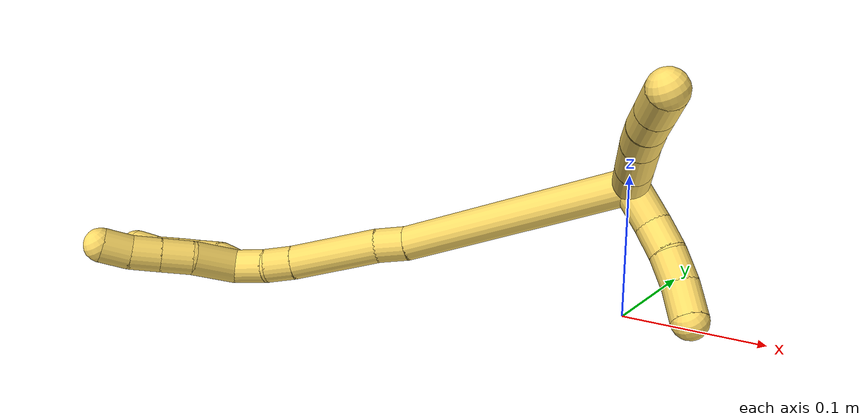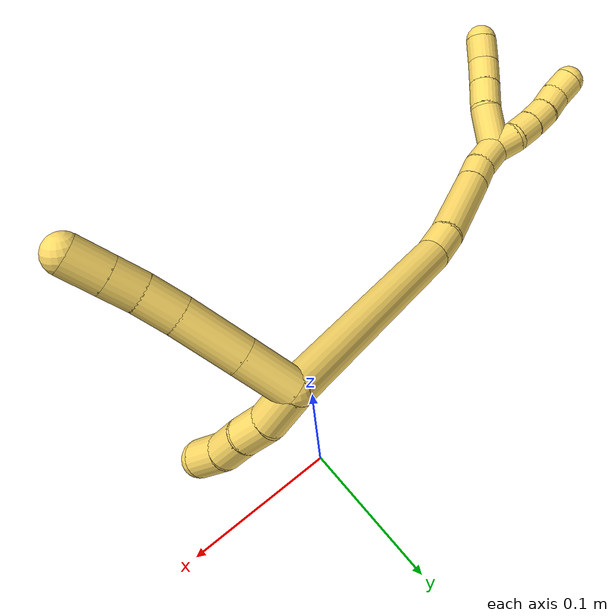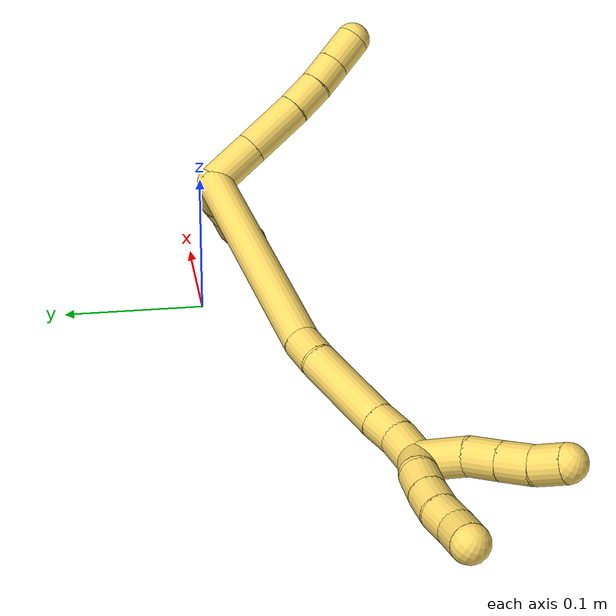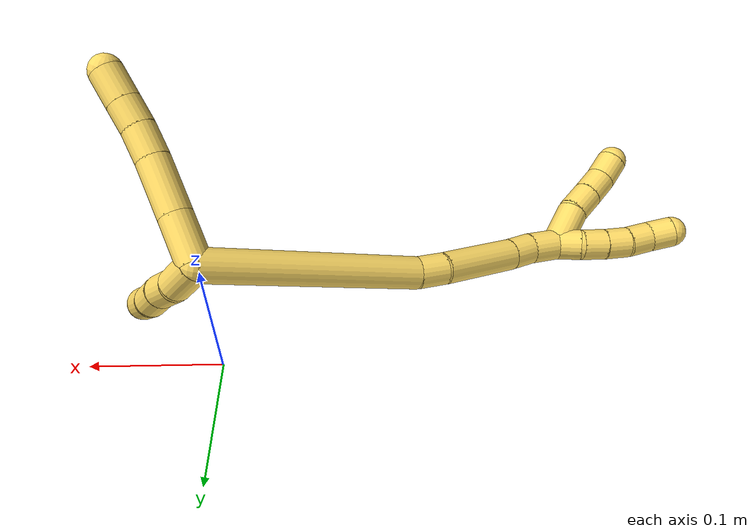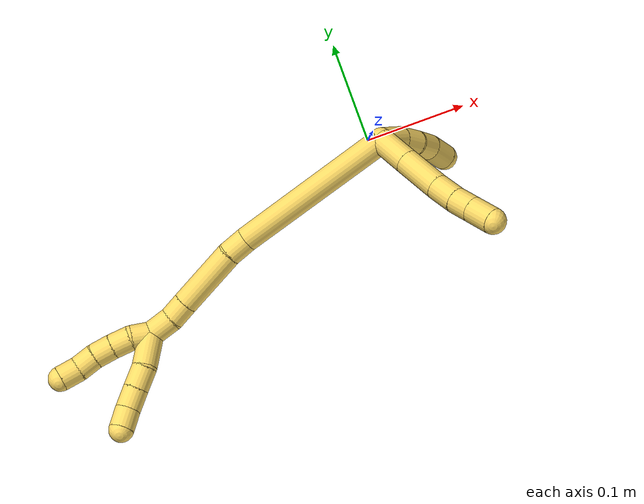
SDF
<sdf version="1.7">
 <world name="default">
  <model name="5">
   <static>0</static>
   <link name="5">
    <collision name="collision-cylinder-e_1_2_8">
     <pose>0.013256 -0.002416 0.012412 0.192221 0.80901 0.0825</pose>
     <geometry><cylinder><radius>0.0125</radius><length>0.03664</length></cylinder></geometry>
     <surface>
      <friction><ode><mu>1.16</mu><mu2>1.16</mu2><slip1>0</slip1><slip2>0</slip2></ode></friction>
      <contact><ode><kp>1e+06</kp><kd>1</kd><max_vel>0</max_vel><min_depth>0.001</min_depth></ode></contact>
     </surface>
    </collision>
    <visual name="visual-cylinder-e_1_2_8">
     <pose>0.013256 -0.002416 0.012412 0.192221 0.80901 0.0825</pose>
     <geometry><cylinder><radius>0.0125</radius><length>0.03664</length></cylinder></geometry>
     <material><ambient>1 0.858824 0.4 1</ambient></material>
    </visual>
    <collision name="collision-cylinder-e_2_8_9">
     <pose>0.042057 -0.007506 0.039374 0.181783 0.810112 0.078118</pose>
     <geometry><cylinder><radius>0.0125</radius><length>0.042917</length></cylinder></geometry>
     <surface>
      <friction><ode><mu>1.16</mu><mu2>1.16</mu2><slip1>0</slip1><slip2>0</slip2></ode></friction>
      <contact><ode><kp>1e+06</kp><kd>1</kd><max_vel>0</max_vel><min_depth>0.001</min_depth></ode></contact>
     </surface>
    </collision>
    <visual name="visual-cylinder-e_2_8_9">
     <pose>0.042057 -0.007506 0.039374 0.181783 0.810112 0.078118</pose>
     <geometry><cylinder><radius>0.0125</radius><length>0.042917</length></cylinder></geometry>
     <material><ambient>1 0.858824 0.4 1</ambient></material>
    </visual>
    <collision name="collision-cylinder-e_3_9_10">
     <pose>0.066682 -0.010998 0.062227 0.098152 0.827736 0.04314</pose>
     <geometry><cylinder><radius>0.0125</radius><length>0.024665</length></cylinder></geometry>
     <surface>
      <friction><ode><mu>1.16</mu><mu2>1.16</mu2><slip1>0</slip1><slip2>0</slip2></ode></friction>
      <contact><ode><kp>1e+06</kp><kd>1</kd><max_vel>0</max_vel><min_depth>0.001</min_depth></ode></contact>
     </surface>
    </collision>
    <visual name="visual-cylinder-e_3_9_10">
     <pose>0.066682 -0.010998 0.062227 0.098152 0.827736 0.04314</pose>
     <geometry><cylinder><radius>0.0125</radius><length>0.024665</length></cylinder></geometry>
     <material><ambient>1 0.858824 0.4 1</ambient></material>
    </visual>
    <collision name="collision-cylinder-e_4_10_11">
     <pose>0.083535 -0.011514 0.077332 -0.044248 0.851346 -0.020064</pose>
     <geometry><cylinder><radius>0.0125</radius><length>0.020663</length></cylinder></geometry>
     <surface>
      <friction><ode><mu>1.16</mu><mu2>1.16</mu2><slip1>0</slip1><slip2>0</slip2></ode></friction>
      <contact><ode><kp>1e+06</kp><kd>1</kd><max_vel>0</max_vel><min_depth>0.001</min_depth></ode></contact>
     </surface>
    </collision>
    <visual name="visual-cylinder-e_4_10_11">
     <pose>0.083535 -0.011514 0.077332 -0.044248 0.851346 -0.020064</pose>
     <geometry><cylinder><radius>0.0125</radius><length>0.020663</length></cylinder></geometry>
     <material><ambient>1 0.858824 0.4 1</ambient></material>
    </visual>
    <collision name="collision-cylinder-e_5_11_6">
     <pose>0.100748 -0.010843 0.092404 -0.044694 0.850988 -0.020257</pose>
     <geometry><cylinder><radius>0.0125</radius><length>0.025115</length></cylinder></geometry>
     <surface>
      <friction><ode><mu>1.16</mu><mu2>1.16</mu2><slip1>0</slip1><slip2>0</slip2></ode></friction>
      <contact><ode><kp>1e+06</kp><kd>1</kd><max_vel>0</max_vel><min_depth>0.001</min_depth></ode></contact>
     </surface>
    </collision>
    <visual name="visual-cylinder-e_5_11_6">
     <pose>0.100748 -0.010843 0.092404 -0.044694 0.850988 -0.020257</pose>
     <geometry><cylinder><radius>0.0125</radius><length>0.025115</length></cylinder></geometry>
     <material><ambient>1 0.858824 0.4 1</ambient></material>
    </visual>
    <collision name="collision-cylinder-e_1_2_12">
     <pose>0.009098 -0.002387 -0.011614 2.93891 0.654487 2.55947</pose>
     <geometry><cylinder><radius>0.0125</radius><length>0.029889</length></cylinder></geometry>
     <surface>
      <friction><ode><mu>1.16</mu><mu2>1.16</mu2><slip1>0</slip1><slip2>0</slip2></ode></friction>
      <contact><ode><kp>1e+06</kp><kd>1</kd><max_vel>0</max_vel><min_depth>0.001</min_depth></ode></contact>
     </surface>
    </collision>
    <visual name="visual-cylinder-e_1_2_12">
     <pose>0.009098 -0.002387 -0.011614 2.93891 0.654487 2.55947</pose>
     <geometry><cylinder><radius>0.0125</radius><length>0.029889</length></cylinder></geometry>
     <material><ambient>1 0.858824 0.4 1</ambient></material>
    </visual>
    <collision name="collision-cylinder-e_2_12_13">
     <pose>0.026492 -0.007927 -0.029914 2.70088 0.842956 2.21494</pose>
     <geometry><cylinder><radius>0.0125</radius><length>0.022226</length></cylinder></geometry>
     <surface>
      <friction><ode><mu>1.16</mu><mu2>1.16</mu2><slip1>0</slip1><slip2>0</slip2></ode></friction>
      <contact><ode><kp>1e+06</kp><kd>1</kd><max_vel>0</max_vel><min_depth>0.001</min_depth></ode></contact>
     </surface>
    </collision>
    <visual name="visual-cylinder-e_2_12_13">
     <pose>0.026492 -0.007927 -0.029914 2.70088 0.842956 2.21494</pose>
     <geometry><cylinder><radius>0.0125</radius><length>0.022226</length></cylinder></geometry>
     <material><ambient>1 0.858824 0.4 1</ambient></material>
    </visual>
    <collision name="collision-cylinder-e_3_13_14">
     <pose>0.042073 -0.015034 -0.04438 2.67137 0.695554 1.97377</pose>
     <geometry><cylinder><radius>0.0125</radius><length>0.022733</length></cylinder></geometry>
     <surface>
      <friction><ode><mu>1.16</mu><mu2>1.16</mu2><slip1>0</slip1><slip2>0</slip2></ode></friction>
      <contact><ode><kp>1e+06</kp><kd>1</kd><max_vel>0</max_vel><min_depth>0.001</min_depth></ode></contact>
     </surface>
    </collision>
    <visual name="visual-cylinder-e_3_13_14">
     <pose>0.042073 -0.015034 -0.04438 2.67137 0.695554 1.97377</pose>
     <geometry><cylinder><radius>0.0125</radius><length>0.022733</length></cylinder></geometry>
     <material><ambient>1 0.858824 0.4 1</ambient></material>
    </visual>
    <collision name="collision-cylinder-e_4_14_5">
     <pose>0.058192 -0.025168 -0.058632 2.37942 0.778963 1.5949</pose>
     <geometry><cylinder><radius>0.0125</radius><length>0.025152</length></cylinder></geometry>
     <surface>
      <friction><ode><mu>1.16</mu><mu2>1.16</mu2><slip1>0</slip1><slip2>0</slip2></ode></friction>
      <contact><ode><kp>1e+06</kp><kd>1</kd><max_vel>0</max_vel><min_depth>0.001</min_depth></ode></contact>
     </surface>
    </collision>
    <visual name="visual-cylinder-e_4_14_5">
     <pose>0.058192 -0.025168 -0.058632 2.37942 0.778963 1.5949</pose>
     <geometry><cylinder><radius>0.0125</radius><length>0.025152</length></cylinder></geometry>
     <material><ambient>1 0.858824 0.4 1</ambient></material>
    </visual>
    <collision name="collision-cylinder-e_1_2_15">
     <pose>-0.052295 -0.064424 0.003568 1.51548 -0.681106 -0.647001</pose>
     <geometry><cylinder><radius>0.0125</radius><length>0.166109</length></cylinder></geometry>
     <surface>
      <friction><ode><mu>1.16</mu><mu2>1.16</mu2><slip1>0</slip1><slip2>0</slip2></ode></friction>
      <contact><ode><kp>1e+06</kp><kd>1</kd><max_vel>0</max_vel><min_depth>0.001</min_depth></ode></contact>
     </surface>
    </collision>
    <visual name="visual-cylinder-e_1_2_15">
     <pose>-0.052295 -0.064424 0.003568 1.51548 -0.681106 -0.647001</pose>
     <geometry><cylinder><radius>0.0125</radius><length>0.166109</length></cylinder></geometry>
     <material><ambient>1 0.858824 0.4 1</ambient></material>
    </visual>
    <collision name="collision-cylinder-e_2_15_16">
     <pose>-0.111481 -0.137549 0.00981 1.27257 -0.64795 -0.486357</pose>
     <geometry><cylinder><radius>0.0125</radius><length>0.022832</length></cylinder></geometry>
     <surface>
      <friction><ode><mu>1.16</mu><mu2>1.16</mu2><slip1>0</slip1><slip2>0</slip2></ode></friction>
      <contact><ode><kp>1e+06</kp><kd>1</kd><max_vel>0</max_vel><min_depth>0.001</min_depth></ode></contact>
     </surface>
    </collision>
    <visual name="visual-cylinder-e_2_15_16">
     <pose>-0.111481 -0.137549 0.00981 1.27257 -0.64795 -0.486357</pose>
     <geometry><cylinder><radius>0.0125</radius><length>0.022832</length></cylinder></geometry>
     <material><ambient>1 0.858824 0.4 1</ambient></material>
    </visual>
    <collision name="collision-cylinder-e_3_16_17">
     <pose>-0.13404 -0.17408 0.018859 1.34562 -0.501917 -0.403016</pose>
     <geometry><cylinder><radius>0.0125</radius><length>0.065135</length></cylinder></geometry>
     <surface>
      <friction><ode><mu>1.16</mu><mu2>1.16</mu2><slip1>0</slip1><slip2>0</slip2></ode></friction>
      <contact><ode><kp>1e+06</kp><kd>1</kd><max_vel>0</max_vel><min_depth>0.001</min_depth></ode></contact>
     </surface>
    </collision>
    <visual name="visual-cylinder-e_3_16_17">
     <pose>-0.13404 -0.17408 0.018859 1.34562 -0.501917 -0.403016</pose>
     <geometry><cylinder><radius>0.0125</radius><length>0.065135</length></cylinder></geometry>
     <material><ambient>1 0.858824 0.4 1</ambient></material>
    </visual>
    <collision name="collision-cylinder-e_4_17_18">
     <pose>-0.154666 -0.21055 0.028118 1.2486 -0.498431 -0.362675</pose>
     <geometry><cylinder><radius>0.0125</radius><length>0.02074</length></cylinder></geometry>
     <surface>
      <friction><ode><mu>1.16</mu><mu2>1.16</mu2><slip1>0</slip1><slip2>0</slip2></ode></friction>
      <contact><ode><kp>1e+06</kp><kd>1</kd><max_vel>0</max_vel><min_depth>0.001</min_depth></ode></contact>
     </surface>
    </collision>
    <visual name="visual-cylinder-e_4_17_18">
     <pose>-0.154666 -0.21055 0.028118 1.2486 -0.498431 -0.362675</pose>
     <geometry><cylinder><radius>0.0125</radius><length>0.02074</length></cylinder></geometry>
     <material><ambient>1 0.858824 0.4 1</ambient></material>
    </visual>
    <collision name="collision-cylinder-e_5_18_1">
     <pose>-0.167754 -0.228224 0.034291 1.2217 -0.701947 -0.501913</pose>
     <geometry><cylinder><radius>0.0125</radius><length>0.025184</length></cylinder></geometry>
     <surface>
      <friction><ode><mu>1.16</mu><mu2>1.16</mu2><slip1>0</slip1><slip2>0</slip2></ode></friction>
      <contact><ode><kp>1e+06</kp><kd>1</kd><max_vel>0</max_vel><min_depth>0.001</min_depth></ode></contact>
     </surface>
    </collision>
    <visual name="visual-cylinder-e_5_18_1">
     <pose>-0.167754 -0.228224 0.034291 1.2217 -0.701947 -0.501913</pose>
     <geometry><cylinder><radius>0.0125</radius><length>0.025184</length></cylinder></geometry>
     <material><ambient>1 0.858824 0.4 1</ambient></material>
    </visual>
    <collision name="collision-cylinder-e_1_1_19">
     <pose>-0.175562 -0.248911 0.050204 0.745348 0.01876 0.007334</pose>
     <geometry><cylinder><radius>0.0125</radius><length>0.034365</length></cylinder></geometry>
     <surface>
      <friction><ode><mu>1.16</mu><mu2>1.16</mu2><slip1>0</slip1><slip2>0</slip2></ode></friction>
      <contact><ode><kp>1e+06</kp><kd>1</kd><max_vel>0</max_vel><min_depth>0.001</min_depth></ode></contact>
     </surface>
    </collision>
    <visual name="visual-cylinder-e_1_1_19">
     <pose>-0.175562 -0.248911 0.050204 0.745348 0.01876 0.007334</pose>
     <geometry><cylinder><radius>0.0125</radius><length>0.034365</length></cylinder></geometry>
     <material><ambient>1 0.858824 0.4 1</ambient></material>
    </visual>
    <collision name="collision-cylinder-e_2_19_20">
     <pose>-0.177036 -0.269391 0.069864 0.89792 -0.157769 -0.07613</pose>
     <geometry><cylinder><radius>0.0125</radius><length>0.022864</length></cylinder></geometry>
     <surface>
      <friction><ode><mu>1.16</mu><mu2>1.16</mu2><slip1>0</slip1><slip2>0</slip2></ode></friction>
      <contact><ode><kp>1e+06</kp><kd>1</kd><max_vel>0</max_vel><min_depth>0.001</min_depth></ode></contact>
     </surface>
    </collision>
    <visual name="visual-cylinder-e_2_19_20">
     <pose>-0.177036 -0.269391 0.069864 0.89792 -0.157769 -0.07613</pose>
     <geometry><cylinder><radius>0.0125</radius><length>0.022864</length></cylinder></geometry>
     <material><ambient>1 0.858824 0.4 1</ambient></material>
    </visual>
    <collision name="collision-cylinder-e_3_20_21">
     <pose>-0.180372 -0.286532 0.083664 0.887722 -0.142767 -0.067976</pose>
     <geometry><cylinder><radius>0.0125</radius><length>0.02165</length></cylinder></geometry>
     <surface>
      <friction><ode><mu>1.16</mu><mu2>1.16</mu2><slip1>0</slip1><slip2>0</slip2></ode></friction>
      <contact><ode><kp>1e+06</kp><kd>1</kd><max_vel>0</max_vel><min_depth>0.001</min_depth></ode></contact>
     </surface>
    </collision>
    <visual name="visual-cylinder-e_3_20_21">
     <pose>-0.180372 -0.286532 0.083664 0.887722 -0.142767 -0.067976</pose>
     <geometry><cylinder><radius>0.0125</radius><length>0.02165</length></cylinder></geometry>
     <material><ambient>1 0.858824 0.4 1</ambient></material>
    </visual>
    <collision name="collision-cylinder-e_4_21_4">
     <pose>-0.18279 -0.301733 0.098382 0.713823 -0.083159 -0.031024</pose>
     <geometry><cylinder><radius>0.0125</radius><length>0.021121</length></cylinder></geometry>
     <surface>
      <friction><ode><mu>1.16</mu><mu2>1.16</mu2><slip1>0</slip1><slip2>0</slip2></ode></friction>
      <contact><ode><kp>1e+06</kp><kd>1</kd><max_vel>0</max_vel><min_depth>0.001</min_depth></ode></contact>
     </surface>
    </collision>
    <visual name="visual-cylinder-e_4_21_4">
     <pose>-0.18279 -0.301733 0.098382 0.713823 -0.083159 -0.031024</pose>
     <geometry><cylinder><radius>0.0125</radius><length>0.021121</length></cylinder></geometry>
     <material><ambient>1 0.858824 0.4 1</ambient></material>
    </visual>
    <collision name="collision-cylinder-e_1_1_22">
     <pose>-0.185062 -0.240195 0.040255 0.831878 -1.16233 -0.564754</pose>
     <geometry><cylinder><radius>0.0125</radius><length>0.02</length></cylinder></geometry>
     <surface>
      <friction><ode><mu>1.16</mu><mu2>1.16</mu2><slip1>0</slip1><slip2>0</slip2></ode></friction>
      <contact><ode><kp>1e+06</kp><kd>1</kd><max_vel>0</max_vel><min_depth>0.001</min_depth></ode></contact>
     </surface>
    </collision>
    <visual name="visual-cylinder-e_1_1_22">
     <pose>-0.185062 -0.240195 0.040255 0.831878 -1.16233 -0.564754</pose>
     <geometry><cylinder><radius>0.0125</radius><length>0.02</length></cylinder></geometry>
     <material><ambient>1 0.858824 0.4 1</ambient></material>
    </visual>
    <collision name="collision-cylinder-e_2_22_23">
     <pose>-0.202176 -0.248826 0.045066 1.21191 -0.916967 -0.65905</pose>
     <geometry><cylinder><radius>0.0125</radius><length>0.02</length></cylinder></geometry>
     <surface>
      <friction><ode><mu>1.16</mu><mu2>1.16</mu2><slip1>0</slip1><slip2>0</slip2></ode></friction>
      <contact><ode><kp>1e+06</kp><kd>1</kd><max_vel>0</max_vel><min_depth>0.001</min_depth></ode></contact>
     </surface>
    </collision>
    <visual name="visual-cylinder-e_2_22_23">
     <pose>-0.202176 -0.248826 0.045066 1.21191 -0.916967 -0.65905</pose>
     <geometry><cylinder><radius>0.0125</radius><length>0.02</length></cylinder></geometry>
     <material><ambient>1 0.858824 0.4 1</ambient></material>
    </visual>
    <collision name="collision-cylinder-e_3_23_24">
     <pose>-0.21766 -0.260506 0.049894 1.14815 -0.85503 -0.573107</pose>
     <geometry><cylinder><radius>0.0125</radius><length>0.02</length></cylinder></geometry>
     <surface>
      <friction><ode><mu>1.16</mu><mu2>1.16</mu2><slip1>0</slip1><slip2>0</slip2></ode></friction>
      <contact><ode><kp>1e+06</kp><kd>1</kd><max_vel>0</max_vel><min_depth>0.001</min_depth></ode></contact>
     </surface>
    </collision>
    <visual name="visual-cylinder-e_3_23_24">
     <pose>-0.21766 -0.260506 0.049894 1.14815 -0.85503 -0.573107</pose>
     <geometry><cylinder><radius>0.0125</radius><length>0.02</length></cylinder></geometry>
     <material><ambient>1 0.858824 0.4 1</ambient></material>
    </visual>
    <collision name="collision-cylinder-e_4_24_25">
     <pose>-0.231609 -0.273296 0.056147 1.08865 -0.694912 -0.431606</pose>
     <geometry><cylinder><radius>0.0125</radius><length>0.02</length></cylinder></geometry>
     <surface>
      <friction><ode><mu>1.16</mu><mu2>1.16</mu2><slip1>0</slip1><slip2>0</slip2></ode></friction>
      <contact><ode><kp>1e+06</kp><kd>1</kd><max_vel>0</max_vel><min_depth>0.001</min_depth></ode></contact>
     </surface>
    </collision>
    <visual name="visual-cylinder-e_4_24_25">
     <pose>-0.231609 -0.273296 0.056147 1.08865 -0.694912 -0.431606</pose>
     <geometry><cylinder><radius>0.0125</radius><length>0.02</length></cylinder></geometry>
     <material><ambient>1 0.858824 0.4 1</ambient></material>
    </visual>
    <collision name="collision-cylinder-e_5_25_3">
     <pose>-0.245466 -0.285259 0.063932 0.884737 -0.841049 -0.417487</pose>
     <geometry><cylinder><radius>0.0125</radius><length>0.02</length></cylinder></geometry>
     <surface>
      <friction><ode><mu>1.16</mu><mu2>1.16</mu2><slip1>0</slip1><slip2>0</slip2></ode></friction>
      <contact><ode><kp>1e+06</kp><kd>1</kd><max_vel>0</max_vel><min_depth>0.001</min_depth></ode></contact>
     </surface>
    </collision>
    <visual name="visual-cylinder-e_5_25_3">
     <pose>-0.245466 -0.285259 0.063932 0.884737 -0.841049 -0.417487</pose>
     <geometry><cylinder><radius>0.0125</radius><length>0.02</length></cylinder></geometry>
     <material><ambient>1 0.858824 0.4 1</ambient></material>
    </visual>
    <collision name="collision-sphere-3">
     <pose>-0.252919 -0.290418 0.068155 0 -0 0</pose>
     <geometry><sphere><radius>0.0125</radius></sphere></geometry>
     <surface>
      <friction><ode><mu>1.16</mu><mu2>1.16</mu2><slip1>0</slip1><slip2>0</slip2></ode></friction>
      <contact><ode><kp>1e+06</kp><kd>1</kd><max_vel>0</max_vel><min_depth>0.001</min_depth></ode></contact>
     </surface>
    </collision>
    <visual name="visual-sphere-3">
     <pose>-0.252919 -0.290418 0.068155 0 -0 0</pose>
     <geometry><sphere><radius>0.0125</radius></sphere></geometry>
     <material><ambient>1 0.858824 0.4 1</ambient></material>
    </visual>
    <collision name="collision-sphere-25">
     <pose>-0.238012 -0.280101 0.059709 0 -0 0</pose>
     <geometry><sphere><radius>0.0125</radius></sphere></geometry>
     <surface>
      <friction><ode><mu>1.16</mu><mu2>1.16</mu2><slip1>0</slip1><slip2>0</slip2></ode></friction>
      <contact><ode><kp>1e+06</kp><kd>1</kd><max_vel>0</max_vel><min_depth>0.001</min_depth></ode></contact>
     </surface>
    </collision>
    <visual name="visual-sphere-25">
     <pose>-0.238012 -0.280101 0.059709 0 -0 0</pose>
     <geometry><sphere><radius>0.0125</radius></sphere></geometry>
     <material><ambient>1 0.858824 0.4 1</ambient></material>
    </visual>
    <collision name="collision-sphere-24">
     <pose>-0.225206 -0.26649 0.052585 0 -0 0</pose>
     <geometry><sphere><radius>0.0125</radius></sphere></geometry>
     <surface>
      <friction><ode><mu>1.16</mu><mu2>1.16</mu2><slip1>0</slip1><slip2>0</slip2></ode></friction>
      <contact><ode><kp>1e+06</kp><kd>1</kd><max_vel>0</max_vel><min_depth>0.001</min_depth></ode></contact>
     </surface>
    </collision>
    <visual name="visual-sphere-24">
     <pose>-0.225206 -0.26649 0.052585 0 -0 0</pose>
     <geometry><sphere><radius>0.0125</radius></sphere></geometry>
     <material><ambient>1 0.858824 0.4 1</ambient></material>
    </visual>
    <collision name="collision-sphere-23">
     <pose>-0.210114 -0.254521 0.047202 0 -0 0</pose>
     <geometry><sphere><radius>0.0125</radius></sphere></geometry>
     <surface>
      <friction><ode><mu>1.16</mu><mu2>1.16</mu2><slip1>0</slip1><slip2>0</slip2></ode></friction>
      <contact><ode><kp>1e+06</kp><kd>1</kd><max_vel>0</max_vel><min_depth>0.001</min_depth></ode></contact>
     </surface>
    </collision>
    <visual name="visual-sphere-23">
     <pose>-0.210114 -0.254521 0.047202 0 -0 0</pose>
     <geometry><sphere><radius>0.0125</radius></sphere></geometry>
     <material><ambient>1 0.858824 0.4 1</ambient></material>
    </visual>
    <collision name="collision-sphere-22">
     <pose>-0.194239 -0.243131 0.04293 0 -0 0</pose>
     <geometry><sphere><radius>0.0125</radius></sphere></geometry>
     <surface>
      <friction><ode><mu>1.16</mu><mu2>1.16</mu2><slip1>0</slip1><slip2>0</slip2></ode></friction>
      <contact><ode><kp>1e+06</kp><kd>1</kd><max_vel>0</max_vel><min_depth>0.001</min_depth></ode></contact>
     </surface>
    </collision>
    <visual name="visual-sphere-22">
     <pose>-0.194239 -0.243131 0.04293 0 -0 0</pose>
     <geometry><sphere><radius>0.0125</radius></sphere></geometry>
     <material><ambient>1 0.858824 0.4 1</ambient></material>
    </visual>
    <collision name="collision-sphere-4">
     <pose>-0.183667 -0.308623 0.106336 0 -0 0</pose>
     <geometry><sphere><radius>0.0125</radius></sphere></geometry>
     <surface>
      <friction><ode><mu>1.16</mu><mu2>1.16</mu2><slip1>0</slip1><slip2>0</slip2></ode></friction>
      <contact><ode><kp>1e+06</kp><kd>1</kd><max_vel>0</max_vel><min_depth>0.001</min_depth></ode></contact>
     </surface>
    </collision>
    <visual name="visual-sphere-4">
     <pose>-0.183667 -0.308623 0.106336 0 -0 0</pose>
     <geometry><sphere><radius>0.0125</radius></sphere></geometry>
     <material><ambient>1 0.858824 0.4 1</ambient></material>
    </visual>
    <collision name="collision-sphere-21">
     <pose>-0.181912 -0.294842 0.090427 0 -0 0</pose>
     <geometry><sphere><radius>0.0125</radius></sphere></geometry>
     <surface>
      <friction><ode><mu>1.16</mu><mu2>1.16</mu2><slip1>0</slip1><slip2>0</slip2></ode></friction>
      <contact><ode><kp>1e+06</kp><kd>1</kd><max_vel>0</max_vel><min_depth>0.001</min_depth></ode></contact>
     </surface>
    </collision>
    <visual name="visual-sphere-21">
     <pose>-0.181912 -0.294842 0.090427 0 -0 0</pose>
     <geometry><sphere><radius>0.0125</radius></sphere></geometry>
     <material><ambient>1 0.858824 0.4 1</ambient></material>
    </visual>
    <collision name="collision-sphere-20">
     <pose>-0.178832 -0.278221 0.076901 0 -0 0</pose>
     <geometry><sphere><radius>0.0125</radius></sphere></geometry>
     <surface>
      <friction><ode><mu>1.16</mu><mu2>1.16</mu2><slip1>0</slip1><slip2>0</slip2></ode></friction>
      <contact><ode><kp>1e+06</kp><kd>1</kd><max_vel>0</max_vel><min_depth>0.001</min_depth></ode></contact>
     </surface>
    </collision>
    <visual name="visual-sphere-20">
     <pose>-0.178832 -0.278221 0.076901 0 -0 0</pose>
     <geometry><sphere><radius>0.0125</radius></sphere></geometry>
     <material><ambient>1 0.858824 0.4 1</ambient></material>
    </visual>
    <collision name="collision-sphere-6">
     <pose>0.110191 -0.010473 0.100674 0 -0 0</pose>
     <geometry><sphere><radius>0.0125</radius></sphere></geometry>
     <surface>
      <friction><ode><mu>1.16</mu><mu2>1.16</mu2><slip1>0</slip1><slip2>0</slip2></ode></friction>
      <contact><ode><kp>1e+06</kp><kd>1</kd><max_vel>0</max_vel><min_depth>0.001</min_depth></ode></contact>
     </surface>
    </collision>
    <visual name="visual-sphere-6">
     <pose>0.110191 -0.010473 0.100674 0 -0 0</pose>
     <geometry><sphere><radius>0.0125</radius></sphere></geometry>
     <material><ambient>1 0.858824 0.4 1</ambient></material>
    </visual>
    <collision name="collision-sphere-11">
     <pose>0.091306 -0.011213 0.084133 0 -0 0</pose>
     <geometry><sphere><radius>0.0125</radius></sphere></geometry>
     <surface>
      <friction><ode><mu>1.16</mu><mu2>1.16</mu2><slip1>0</slip1><slip2>0</slip2></ode></friction>
      <contact><ode><kp>1e+06</kp><kd>1</kd><max_vel>0</max_vel><min_depth>0.001</min_depth></ode></contact>
     </surface>
    </collision>
    <visual name="visual-sphere-11">
     <pose>0.091306 -0.011213 0.084133 0 -0 0</pose>
     <geometry><sphere><radius>0.0125</radius></sphere></geometry>
     <material><ambient>1 0.858824 0.4 1</ambient></material>
    </visual>
    <collision name="collision-sphere-10">
     <pose>0.075763 -0.011815 0.07053 0 -0 0</pose>
     <geometry><sphere><radius>0.0125</radius></sphere></geometry>
     <surface>
      <friction><ode><mu>1.16</mu><mu2>1.16</mu2><slip1>0</slip1><slip2>0</slip2></ode></friction>
      <contact><ode><kp>1e+06</kp><kd>1</kd><max_vel>0</max_vel><min_depth>0.001</min_depth></ode></contact>
     </surface>
    </collision>
    <visual name="visual-sphere-10">
     <pose>0.075763 -0.011815 0.07053 0 -0 0</pose>
     <geometry><sphere><radius>0.0125</radius></sphere></geometry>
     <material><ambient>1 0.858824 0.4 1</ambient></material>
    </visual>
    <collision name="collision-sphere-9">
     <pose>0.0576 -0.01018 0.053924 0 -0 0</pose>
     <geometry><sphere><radius>0.0125</radius></sphere></geometry>
     <surface>
      <friction><ode><mu>1.16</mu><mu2>1.16</mu2><slip1>0</slip1><slip2>0</slip2></ode></friction>
      <contact><ode><kp>1e+06</kp><kd>1</kd><max_vel>0</max_vel><min_depth>0.001</min_depth></ode></contact>
     </surface>
    </collision>
    <visual name="visual-sphere-9">
     <pose>0.0576 -0.01018 0.053924 0 -0 0</pose>
     <geometry><sphere><radius>0.0125</radius></sphere></geometry>
     <material><ambient>1 0.858824 0.4 1</ambient></material>
    </visual>
    <collision name="collision-sphere-2">
     <geometry><sphere><radius>0.0125</radius></sphere></geometry>
     <surface>
      <friction><ode><mu>1.16</mu><mu2>1.16</mu2><slip1>0</slip1><slip2>0</slip2></ode></friction>
      <contact><ode><kp>1e+06</kp><kd>1</kd><max_vel>0</max_vel><min_depth>0.001</min_depth></ode></contact>
     </surface>
    </collision>
    <visual name="visual-sphere-2">
     <geometry><sphere><radius>0.0125</radius></sphere></geometry>
     <material><ambient>1 0.858824 0.4 1</ambient></material>
    </visual>
    <collision name="collision-sphere-19">
     <pose>-0.17524 -0.260562 0.062828 0 -0 0</pose>
     <geometry><sphere><radius>0.0125</radius></sphere></geometry>
     <surface>
      <friction><ode><mu>1.16</mu><mu2>1.16</mu2><slip1>0</slip1><slip2>0</slip2></ode></friction>
      <contact><ode><kp>1e+06</kp><kd>1</kd><max_vel>0</max_vel><min_depth>0.001</min_depth></ode></contact>
     </surface>
    </collision>
    <visual name="visual-sphere-19">
     <pose>-0.17524 -0.260562 0.062828 0 -0 0</pose>
     <geometry><sphere><radius>0.0125</radius></sphere></geometry>
     <material><ambient>1 0.858824 0.4 1</ambient></material>
    </visual>
    <collision name="collision-sphere-8">
     <pose>0.026513 -0.004831 0.024824 0 -0 0</pose>
     <geometry><sphere><radius>0.0125</radius></sphere></geometry>
     <surface>
      <friction><ode><mu>1.16</mu><mu2>1.16</mu2><slip1>0</slip1><slip2>0</slip2></ode></friction>
      <contact><ode><kp>1e+06</kp><kd>1</kd><max_vel>0</max_vel><min_depth>0.001</min_depth></ode></contact>
     </surface>
    </collision>
    <visual name="visual-sphere-8">
     <pose>0.026513 -0.004831 0.024824 0 -0 0</pose>
     <geometry><sphere><radius>0.0125</radius></sphere></geometry>
     <material><ambient>1 0.858824 0.4 1</ambient></material>
    </visual>
    <collision name="collision-sphere-12">
     <pose>0.018195 -0.004773 -0.023227 0 -0 0</pose>
     <geometry><sphere><radius>0.0125</radius></sphere></geometry>
     <surface>
      <friction><ode><mu>1.16</mu><mu2>1.16</mu2><slip1>0</slip1><slip2>0</slip2></ode></friction>
      <contact><ode><kp>1e+06</kp><kd>1</kd><max_vel>0</max_vel><min_depth>0.001</min_depth></ode></contact>
     </surface>
    </collision>
    <visual name="visual-sphere-12">
     <pose>0.018195 -0.004773 -0.023227 0 -0 0</pose>
     <geometry><sphere><radius>0.0125</radius></sphere></geometry>
     <material><ambient>1 0.858824 0.4 1</ambient></material>
    </visual>
    <collision name="collision-sphere-13">
     <pose>0.034789 -0.011081 -0.036601 0 -0 0</pose>
     <geometry><sphere><radius>0.0125</radius></sphere></geometry>
     <surface>
      <friction><ode><mu>1.16</mu><mu2>1.16</mu2><slip1>0</slip1><slip2>0</slip2></ode></friction>
      <contact><ode><kp>1e+06</kp><kd>1</kd><max_vel>0</max_vel><min_depth>0.001</min_depth></ode></contact>
     </surface>
    </collision>
    <visual name="visual-sphere-13">
     <pose>0.034789 -0.011081 -0.036601 0 -0 0</pose>
     <geometry><sphere><radius>0.0125</radius></sphere></geometry>
     <material><ambient>1 0.858824 0.4 1</ambient></material>
    </visual>
    <collision name="collision-sphere-14">
     <pose>0.049357 -0.018988 -0.052159 0 -0 0</pose>
     <geometry><sphere><radius>0.0125</radius></sphere></geometry>
     <surface>
      <friction><ode><mu>1.16</mu><mu2>1.16</mu2><slip1>0</slip1><slip2>0</slip2></ode></friction>
      <contact><ode><kp>1e+06</kp><kd>1</kd><max_vel>0</max_vel><min_depth>0.001</min_depth></ode></contact>
     </surface>
    </collision>
    <visual name="visual-sphere-14">
     <pose>0.049357 -0.018988 -0.052159 0 -0 0</pose>
     <geometry><sphere><radius>0.0125</radius></sphere></geometry>
     <material><ambient>1 0.858824 0.4 1</ambient></material>
    </visual>
    <collision name="collision-sphere-5">
     <pose>0.067027 -0.031347 -0.065106 0 -0 0</pose>
     <geometry><sphere><radius>0.0125</radius></sphere></geometry>
     <surface>
      <friction><ode><mu>1.16</mu><mu2>1.16</mu2><slip1>0</slip1><slip2>0</slip2></ode></friction>
      <contact><ode><kp>1e+06</kp><kd>1</kd><max_vel>0</max_vel><min_depth>0.001</min_depth></ode></contact>
     </surface>
    </collision>
    <visual name="visual-sphere-5">
     <pose>0.067027 -0.031347 -0.065106 0 -0 0</pose>
     <geometry><sphere><radius>0.0125</radius></sphere></geometry>
     <material><ambient>1 0.858824 0.4 1</ambient></material>
    </visual>
    <collision name="collision-sphere-15">
     <pose>-0.104591 -0.128849 0.007135 0 -0 0</pose>
     <geometry><sphere><radius>0.0125</radius></sphere></geometry>
     <surface>
      <friction><ode><mu>1.16</mu><mu2>1.16</mu2><slip1>0</slip1><slip2>0</slip2></ode></friction>
      <contact><ode><kp>1e+06</kp><kd>1</kd><max_vel>0</max_vel><min_depth>0.001</min_depth></ode></contact>
     </surface>
    </collision>
    <visual name="visual-sphere-15">
     <pose>-0.104591 -0.128849 0.007135 0 -0 0</pose>
     <geometry><sphere><radius>0.0125</radius></sphere></geometry>
     <material><ambient>1 0.858824 0.4 1</ambient></material>
    </visual>
    <collision name="collision-sphere-16">
     <pose>-0.118371 -0.14625 0.012484 0 -0 0</pose>
     <geometry><sphere><radius>0.0125</radius></sphere></geometry>
     <surface>
      <friction><ode><mu>1.16</mu><mu2>1.16</mu2><slip1>0</slip1><slip2>0</slip2></ode></friction>
      <contact><ode><kp>1e+06</kp><kd>1</kd><max_vel>0</max_vel><min_depth>0.001</min_depth></ode></contact>
     </surface>
    </collision>
    <visual name="visual-sphere-16">
     <pose>-0.118371 -0.14625 0.012484 0 -0 0</pose>
     <geometry><sphere><radius>0.0125</radius></sphere></geometry>
     <material><ambient>1 0.858824 0.4 1</ambient></material>
    </visual>
    <collision name="collision-sphere-17">
     <pose>-0.149708 -0.20191 0.025234 0 -0 0</pose>
     <geometry><sphere><radius>0.0125</radius></sphere></geometry>
     <surface>
      <friction><ode><mu>1.16</mu><mu2>1.16</mu2><slip1>0</slip1><slip2>0</slip2></ode></friction>
      <contact><ode><kp>1e+06</kp><kd>1</kd><max_vel>0</max_vel><min_depth>0.001</min_depth></ode></contact>
     </surface>
    </collision>
    <visual name="visual-sphere-17">
     <pose>-0.149708 -0.20191 0.025234 0 -0 0</pose>
     <geometry><sphere><radius>0.0125</radius></sphere></geometry>
     <material><ambient>1 0.858824 0.4 1</ambient></material>
    </visual>
    <collision name="collision-sphere-18">
     <pose>-0.159623 -0.219189 0.031002 0 -0 0</pose>
     <geometry><sphere><radius>0.0125</radius></sphere></geometry>
     <surface>
      <friction><ode><mu>1.16</mu><mu2>1.16</mu2><slip1>0</slip1><slip2>0</slip2></ode></friction>
      <contact><ode><kp>1e+06</kp><kd>1</kd><max_vel>0</max_vel><min_depth>0.001</min_depth></ode></contact>
     </surface>
    </collision>
    <visual name="visual-sphere-18">
     <pose>-0.159623 -0.219189 0.031002 0 -0 0</pose>
     <geometry><sphere><radius>0.0125</radius></sphere></geometry>
     <material><ambient>1 0.858824 0.4 1</ambient></material>
    </visual>
    <collision name="collision-sphere-1">
     <pose>-0.175884 -0.237259 0.037579 0 -0 0</pose>
     <geometry><sphere><radius>0.0125</radius></sphere></geometry>
     <surface>
      <friction><ode><mu>1.16</mu><mu2>1.16</mu2><slip1>0</slip1><slip2>0</slip2></ode></friction>
      <contact><ode><kp>1e+06</kp><kd>1</kd><max_vel>0</max_vel><min_depth>0.001</min_depth></ode></contact>
     </surface>
    </collision>
    <visual name="visual-sphere-1">
     <pose>-0.175884 -0.237259 0.037579 0 -0 0</pose>
     <geometry><sphere><radius>0.0125</radius></sphere></geometry>
     <material><ambient>1 0.858824 0.4 1</ambient></material>
    </visual>
    <inertial>
     <pose>-0.073878 -0.121548 0.026549 0 -0 0</pose>
     <mass>0.75</mass>
     <inertia><ixx>9.4e-05</ixx><ixy>0</ixy><ixz>0</ixz><iyy>-4e-06</iyy><iyz>0</iyz><izz>0.000602</izz></inertia>
    </inertial>
   </link>
   <pose>0.005065 -0.010885 0.095782 0.506544 0.019362 -0.565423</pose>
  </model>
 </world>
</sdf>
